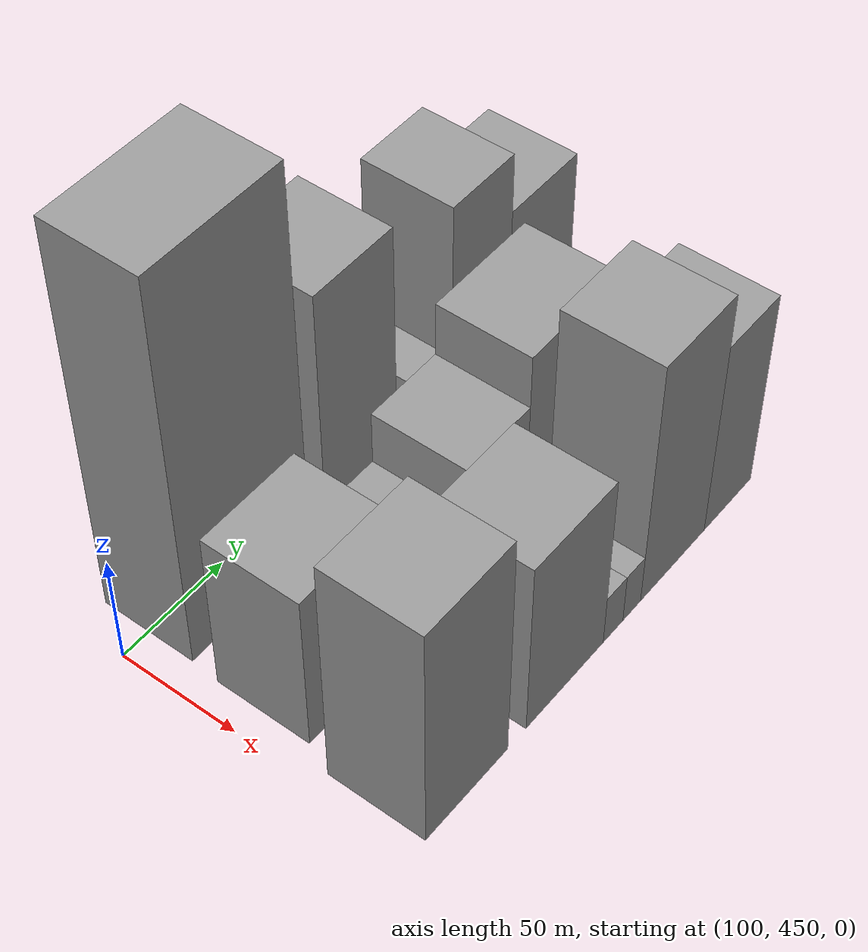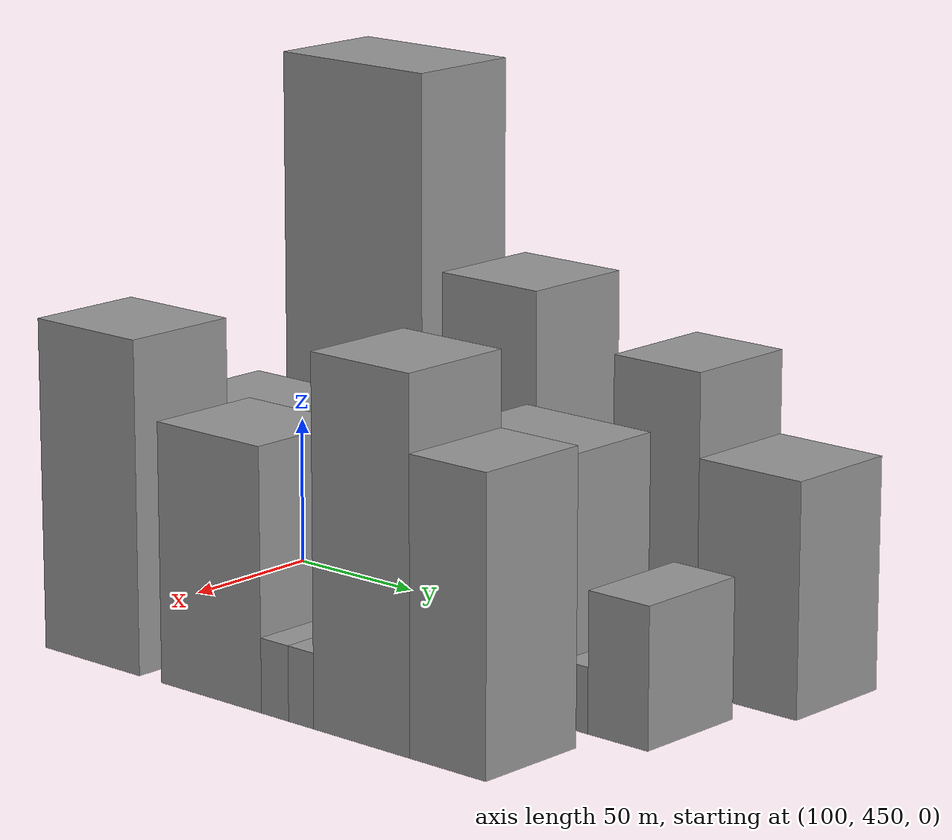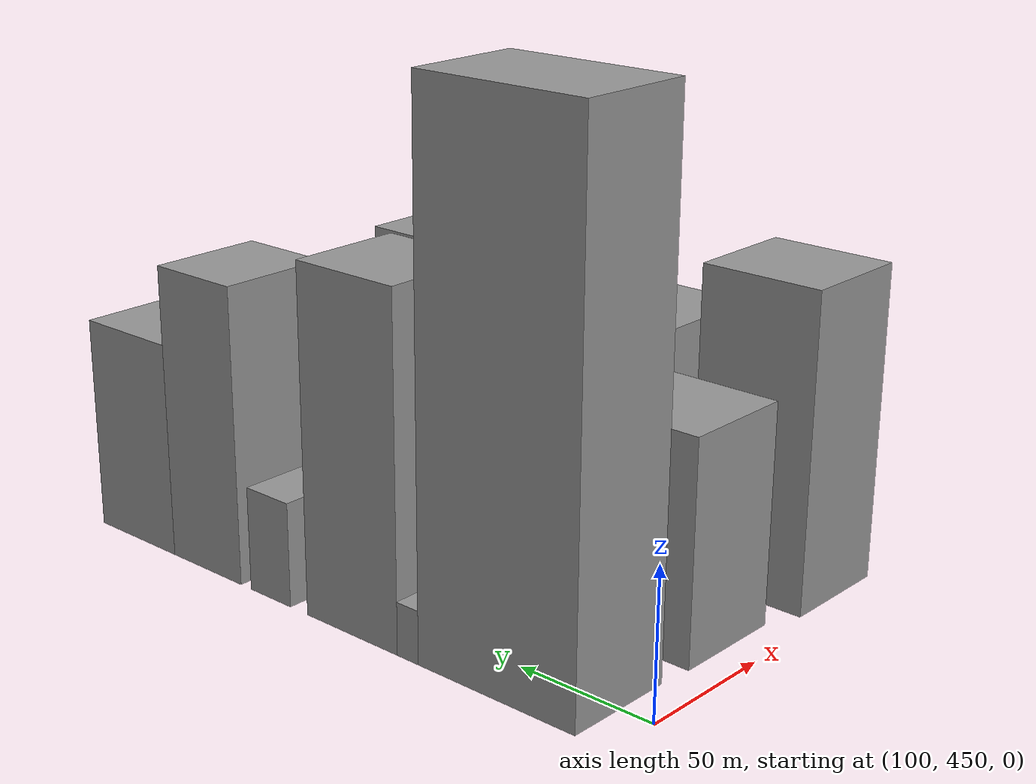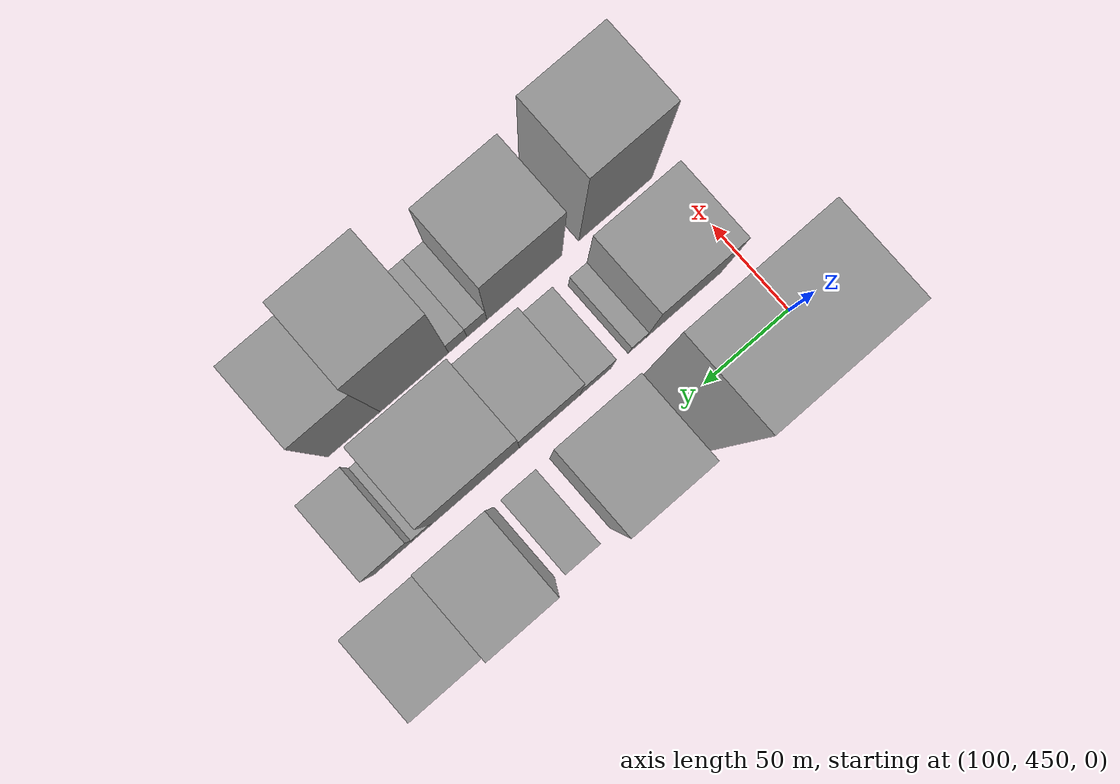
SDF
<sdf version="1.6">
 <world name="default">
  <model name="building_41">
   <static>1</static>
   <pose>100.0000 493.1594 0 0.000000 0.000000 0.000000</pose>
   <link name="link">
    <pose>0 0 90.00 0 0 0</pose>
    <collision name="collision"><geometry><box><size>40.0000 61.1064 180.0000</size></box></geometry></collision>
    <visual name="visual">
     <cast_shadows>0</cast_shadows>
     <geometry><box><size>40.0000 61.1064 180.0000</size></box></geometry>
     <material>
      <script>
       <uri>model://grey_wall/materials/scripts</uri>
       <uri>model://grey_wall/materials/textures</uri>
       <name>vrc/grey_wall</name>
      </script>
     </material>
    </visual>
   </link>
  </model>
  <model name="building_42">
   <static>1</static>
   <pose>100.0000 528.1135 0 0.000000 0.000000 0.000000</pose>
   <link name="link">
    <pose>0 0 9.00 0 0 0</pose>
    <collision name="collision"><geometry><box><size>40.0000 8.8017 18.0000</size></box></geometry></collision>
    <visual name="visual">
     <cast_shadows>0</cast_shadows>
     <geometry><box><size>40.0000 8.8017 18.0000</size></box></geometry>
     <material>
      <script>
       <uri>model://grey_wall/materials/scripts</uri>
       <uri>model://grey_wall/materials/textures</uri>
       <name>vrc/grey_wall</name>
      </script>
     </material>
    </visual>
   </link>
  </model>
  <model name="building_43">
   <static>1</static>
   <pose>100.0000 552.5174 0 0.000000 0.000000 0.000000</pose>
   <link name="link">
    <pose>0 0 58.50 0 0 0</pose>
    <collision name="collision"><geometry><box><size>40.0000 40.0060 117.0000</size></box></geometry></collision>
    <visual name="visual">
     <cast_shadows>0</cast_shadows>
     <geometry><box><size>40.0000 40.0060 117.0000</size></box></geometry>
     <material>
      <script>
       <uri>model://grey_wall/materials/scripts</uri>
       <uri>model://grey_wall/materials/textures</uri>
       <name>vrc/grey_wall</name>
      </script>
     </material>
    </visual>
   </link>
  </model>
  <model name="building_44">
   <static>1</static>
   <pose>100.0000 590.0059 0 0.000000 0.000000 0.000000</pose>
   <link name="link">
    <pose>0 0 18.00 0 0 0</pose>
    <collision name="collision"><geometry><box><size>40.0000 18.9711 36.0000</size></box></geometry></collision>
    <visual name="visual">
     <cast_shadows>0</cast_shadows>
     <geometry><box><size>40.0000 18.9711 36.0000</size></box></geometry>
     <material>
      <script>
       <uri>model://grey_wall/materials/scripts</uri>
       <uri>model://grey_wall/materials/textures</uri>
       <name>vrc/grey_wall</name>
      </script>
     </material>
    </visual>
   </link>
  </model>
  <model name="building_45">
   <static>1</static>
   <pose>100.0000 621.5701 0 0.000000 0.000000 0.000000</pose>
   <link name="link">
    <pose>0 0 51.00 0 0 0</pose>
    <collision name="collision"><geometry><box><size>40.0000 34.1574 102.0000</size></box></geometry></collision>
    <visual name="visual">
     <cast_shadows>0</cast_shadows>
     <geometry><box><size>40.0000 34.1574 102.0000</size></box></geometry>
     <material>
      <script>
       <uri>model://grey_wall/materials/scripts</uri>
       <uri>model://grey_wall/materials/textures</uri>
       <name>vrc/grey_wall</name>
      </script>
     </material>
    </visual>
   </link>
  </model>
  <model name="building_46">
   <static>1</static>
   <pose>100.0000 658.1982 0 0.000000 0.000000 0.000000</pose>
   <link name="link">
    <pose>0 0 37.50 0 0 0</pose>
    <collision name="collision"><geometry><box><size>40.0000 39.0986 75.0000</size></box></geometry></collision>
    <visual name="visual">
     <cast_shadows>0</cast_shadows>
     <geometry><box><size>40.0000 39.0986 75.0000</size></box></geometry>
     <material>
      <script>
       <uri>model://grey_wall/materials/scripts</uri>
       <uri>model://grey_wall/materials/textures</uri>
       <name>vrc/grey_wall</name>
      </script>
     </material>
    </visual>
   </link>
  </model>
  <model name="building_88">
   <static>1</static>
   <pose>152.0000 483.9628 0 0.000000 0.000000 0.000000</pose>
   <link name="link">
    <pose>0 0 37.50 0 0 0</pose>
    <collision name="collision"><geometry><box><size>40.0000 44.7851 75.0000</size></box></geometry></collision>
    <visual name="visual">
     <cast_shadows>0</cast_shadows>
     <geometry><box><size>40.0000 44.7851 75.0000</size></box></geometry>
     <material>
      <script>
       <uri>model://grey_wall/materials/scripts</uri>
       <uri>model://grey_wall/materials/textures</uri>
       <name>vrc/grey_wall</name>
      </script>
     </material>
    </visual>
   </link>
  </model>
  <model name="building_89">
   <static>1</static>
   <pose>152.0000 511.2450 0 0.000000 0.000000 0.000000</pose>
   <link name="link">
    <pose>0 0 10.50 0 0 0</pose>
    <collision name="collision"><geometry><box><size>40.0000 9.7792 21.0000</size></box></geometry></collision>
    <visual name="visual">
     <cast_shadows>0</cast_shadows>
     <geometry><box><size>40.0000 9.7792 21.0000</size></box></geometry>
     <material>
      <script>
       <uri>model://grey_wall/materials/scripts</uri>
       <uri>model://grey_wall/materials/textures</uri>
       <name>vrc/grey_wall</name>
      </script>
     </material>
    </visual>
   </link>
  </model>
  <model name="building_90">
   <static>1</static>
   <pose>152.0000 535.3604 0 0.000000 0.000000 0.000000</pose>
   <link name="link">
    <pose>0 0 18.00 0 0 0</pose>
    <collision name="collision"><geometry><box><size>40.0000 18.4517 36.0000</size></box></geometry></collision>
    <visual name="visual">
     <cast_shadows>0</cast_shadows>
     <geometry><box><size>40.0000 18.4517 36.0000</size></box></geometry>
     <material>
      <script>
       <uri>model://grey_wall/materials/scripts</uri>
       <uri>model://grey_wall/materials/textures</uri>
       <name>vrc/grey_wall</name>
      </script>
     </material>
    </visual>
   </link>
  </model>
  <model name="building_91">
   <static>1</static>
   <pose>152.0000 561.9713 0 0.000000 0.000000 0.000000</pose>
   <link name="link">
    <pose>0 0 30.00 0 0 0</pose>
    <collision name="collision"><geometry><box><size>40.0000 34.7701 60.0000</size></box></geometry></collision>
    <visual name="visual">
     <cast_shadows>0</cast_shadows>
     <geometry><box><size>40.0000 34.7701 60.0000</size></box></geometry>
     <material>
      <script>
       <uri>model://grey_wall/materials/scripts</uri>
       <uri>model://grey_wall/materials/textures</uri>
       <name>vrc/grey_wall</name>
      </script>
     </material>
    </visual>
   </link>
  </model>
  <model name="building_92">
   <static>1</static>
   <pose>152.0000 604.2930 0 0.000000 0.000000 0.000000</pose>
   <link name="link">
    <pose>0 0 42.00 0 0 0</pose>
    <collision name="collision"><geometry><box><size>40.0000 49.8733 84.0000</size></box></geometry></collision>
    <visual name="visual">
     <cast_shadows>0</cast_shadows>
     <geometry><box><size>40.0000 49.8733 84.0000</size></box></geometry>
     <material>
      <script>
       <uri>model://grey_wall/materials/scripts</uri>
       <uri>model://grey_wall/materials/textures</uri>
       <name>vrc/grey_wall</name>
      </script>
     </material>
    </visual>
   </link>
  </model>
  <model name="building_93">
   <static>1</static>
   <pose>152.0000 634.2186 0 0.000000 0.000000 0.000000</pose>
   <link name="link">
    <pose>0 0 10.50 0 0 0</pose>
    <collision name="collision"><geometry><box><size>40.0000 9.9779 21.0000</size></box></geometry></collision>
    <visual name="visual">
     <cast_shadows>0</cast_shadows>
     <geometry><box><size>40.0000 9.9779 21.0000</size></box></geometry>
     <material>
      <script>
       <uri>model://grey_wall/materials/scripts</uri>
       <uri>model://grey_wall/materials/textures</uri>
       <name>vrc/grey_wall</name>
      </script>
     </material>
    </visual>
   </link>
  </model>
  <model name="building_94">
   <static>1</static>
   <pose>152.0000 650.9316 0 0.000000 0.000000 0.000000</pose>
   <link name="link">
    <pose>0 0 22.50 0 0 0</pose>
    <collision name="collision"><geometry><box><size>40.0000 23.4481 45.0000</size></box></geometry></collision>
    <visual name="visual">
     <cast_shadows>0</cast_shadows>
     <geometry><box><size>40.0000 23.4481 45.0000</size></box></geometry>
     <material>
      <script>
       <uri>model://grey_wall/materials/scripts</uri>
       <uri>model://grey_wall/materials/textures</uri>
       <name>vrc/grey_wall</name>
      </script>
     </material>
    </visual>
   </link>
  </model>
  <model name="building_141">
   <static>1</static>
   <pose>204.0000 477.8938 0 0.000000 0.000000 0.000000</pose>
   <link name="link">
    <pose>0 0 54.00 0 0 0</pose>
    <collision name="collision"><geometry><box><size>40.0000 43.1884 108.0000</size></box></geometry></collision>
    <visual name="visual">
     <cast_shadows>0</cast_shadows>
     <geometry><box><size>40.0000 43.1884 108.0000</size></box></geometry>
     <material>
      <script>
       <uri>model://grey_wall/materials/scripts</uri>
       <uri>model://grey_wall/materials/textures</uri>
       <name>vrc/grey_wall</name>
      </script>
     </material>
    </visual>
   </link>
  </model>
  <model name="building_142">
   <static>1</static>
   <pose>204.0000 531.3603 0 0.000000 0.000000 0.000000</pose>
   <link name="link">
    <pose>0 0 42.00 0 0 0</pose>
    <collision name="collision"><geometry><box><size>40.0000 43.7445 84.0000</size></box></geometry></collision>
    <visual name="visual">
     <cast_shadows>0</cast_shadows>
     <geometry><box><size>40.0000 43.7445 84.0000</size></box></geometry>
     <material>
      <script>
       <uri>model://grey_wall/materials/scripts</uri>
       <uri>model://grey_wall/materials/textures</uri>
       <name>vrc/grey_wall</name>
      </script>
     </material>
    </visual>
   </link>
  </model>
  <model name="building_143">
   <static>1</static>
   <pose>204.0000 559.0138 0 0.000000 0.000000 0.000000</pose>
   <link name="link">
    <pose>0 0 12.00 0 0 0</pose>
    <collision name="collision"><geometry><box><size>40.0000 11.5624 24.0000</size></box></geometry></collision>
    <visual name="visual">
     <cast_shadows>0</cast_shadows>
     <geometry><box><size>40.0000 11.5624 24.0000</size></box></geometry>
     <material>
      <script>
       <uri>model://grey_wall/materials/scripts</uri>
       <uri>model://grey_wall/materials/textures</uri>
       <name>vrc/grey_wall</name>
      </script>
     </material>
    </visual>
   </link>
  </model>
  <model name="building_144">
   <static>1</static>
   <pose>204.0000 570.0960 0 0.000000 0.000000 0.000000</pose>
   <link name="link">
    <pose>0 0 12.00 0 0 0</pose>
    <collision name="collision"><geometry><box><size>40.0000 10.6019 24.0000</size></box></geometry></collision>
    <visual name="visual">
     <cast_shadows>0</cast_shadows>
     <geometry><box><size>40.0000 10.6019 24.0000</size></box></geometry>
     <material>
      <script>
       <uri>model://grey_wall/materials/scripts</uri>
       <uri>model://grey_wall/materials/textures</uri>
       <name>vrc/grey_wall</name>
      </script>
     </material>
    </visual>
   </link>
  </model>
  <model name="building_145">
   <static>1</static>
   <pose>204.0000 595.1154 0 0.000000 0.000000 0.000000</pose>
   <link name="link">
    <pose>0 0 58.50 0 0 0</pose>
    <collision name="collision"><geometry><box><size>40.0000 39.4369 117.0000</size></box></geometry></collision>
    <visual name="visual">
     <cast_shadows>0</cast_shadows>
     <geometry><box><size>40.0000 39.4369 117.0000</size></box></geometry>
     <material>
      <script>
       <uri>model://grey_wall/materials/scripts</uri>
       <uri>model://grey_wall/materials/textures</uri>
       <name>vrc/grey_wall</name>
      </script>
     </material>
    </visual>
   </link>
  </model>
  <model name="building_146">
   <static>1</static>
   <pose>204.0000 629.8808 0 0.000000 0.000000 0.000000</pose>
   <link name="link">
    <pose>0 0 46.50 0 0 0</pose>
    <collision name="collision"><geometry><box><size>40.0000 30.0940 93.0000</size></box></geometry></collision>
    <visual name="visual">
     <cast_shadows>0</cast_shadows>
     <geometry><box><size>40.0000 30.0940 93.0000</size></box></geometry>
     <material>
      <script>
       <uri>model://grey_wall/materials/scripts</uri>
       <uri>model://grey_wall/materials/textures</uri>
       <name>vrc/grey_wall</name>
      </script>
     </material>
    </visual>
   </link>
  </model>
 </world>
</sdf>
